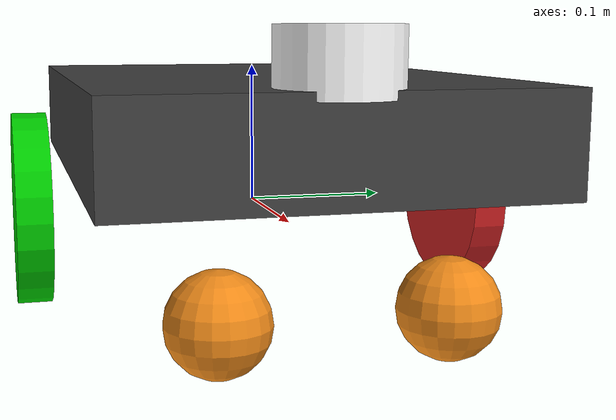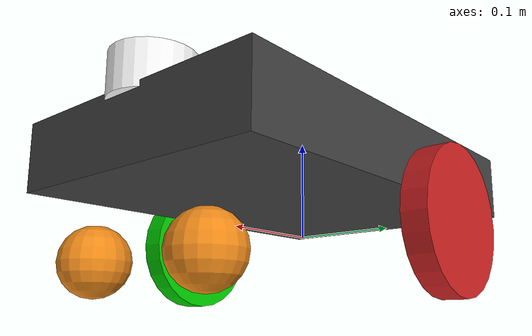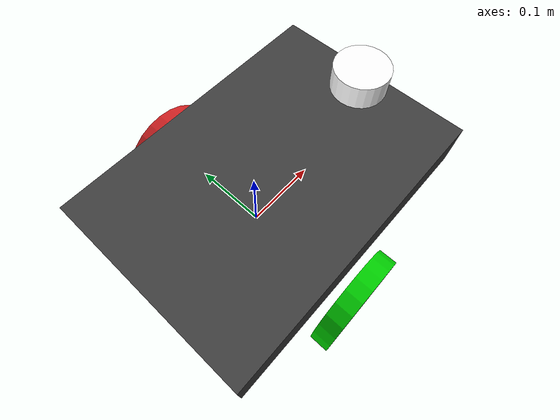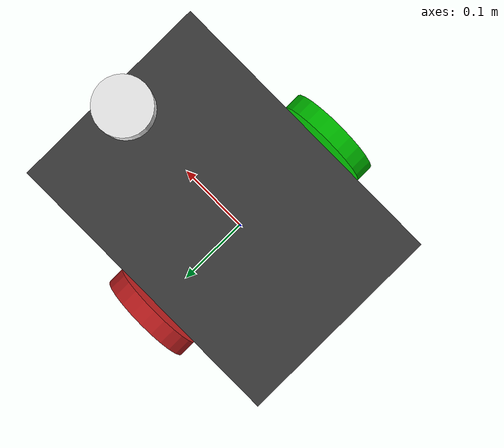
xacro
<?xml version="1.0" ?>

<!-- inspired from http://www.theconstructsim.com/ros-projects-exploring-ros-using-2-wheeled-robot-part-1/#part1  -->

<robot name="mnwlk3r" xmlns:xacro="https://www.ros.org/wiki/xacro" >

  <material name="black">
    <color rgba="0.0 0.0 0.0 1.0"/>
  </material>
  <material name="blue">
    <color rgba="0.0 0.0 0.8 1.0"/> -->
  </material>
  <material name="green">
    <color rgba="0.0 0.8 0.0 1.0"/>
  </material>
  <material name="grey">
    <color rgba="0.25 0.25 0.25 1.0"/>
  </material>
  <material name="orange">
    <color rgba="1.0 0.423529411765 0.0392156862745 1.0"/>
  </material>
  <material name="brown">
    <color rgba="0.870588235294 0.811764705882 0.764705882353 1.0"/>
  </material>
  <material name="red">
    <color rgba="0.80078125 0.12890625 0.1328125 1.0"/>
  </material>
  <material name="white">
    <color rgba="1.0 1.0 1.0 1.0"/>
  </material>

  <gazebo reference="base_footprint">
    <material>Gazebo/Orange</material>
  </gazebo>
  <gazebo reference="link_left_wheel">
    <material>Gazebo/Blue</material>
  </gazebo>
  <gazebo reference="link_right_wheel">
    <material>Gazebo/Blue</material>
  </gazebo>

    <xacro:macro name="cylinder_inertia" params="mass r l">
      <inertia  ixx="${mass*(3*r*r+l*l)/12}" ixy = "0" ixz = "0"
                iyy="${mass*(3*r*r+l*l)/12}" iyz = "0"
                izz="${mass*(r*r)/2}" />
    </xacro:macro>

  <link name="base_footprint">
    <!-- pose and inertial -->
    <pose>0 0 0.068 0 0 0</pose>
    <inertial>
      <mass value="5"/>
      <origin xyz="0 0 0.1" rpy="0.0 0 0"  />
      <inertia ixx="0.0395416666667" ixy="0" ixz="0" iyy="0.106208333333" iyz="0" izz="0.106208333333"/>
    </inertial>

    <collision name="collision_chassis">
      <origin xyz="0.030 0 0.062" rpy="0 0 0" />
      <geometry>
        <box size="0.400 0.280 0.066"/>
      </geometry>
    </collision>

    <visual>
      <origin xyz="0.030 0 0.062" rpy="0 0 0" />  <!-- Z = 29mm offset + half box height = 29 + 66/2 = 62mm   -->
      <geometry>
        <box size="0.400 0.280 0.066"/>
      </geometry>
      <material name="grey"/>
    </visual>

    <!-- caster front left (63mm diameter) -->
    <collision name="caster_front_left_collision">
      <!-- Z = - main wheel radius + caster wheel radius = -136/2 + 63/2 = -68 + 31.5 = -36.5mm  -->
      <origin xyz="0.200 0.070 -0.0365"  rpy=" 0 0 0"  />
      <geometry>
        <sphere radius="0.0315"/>
      </geometry>
      <surface>
        <friction>
          <ode>
            <mu>0</mu>
            <mu2>0</mu2>
            <slip1>1.0</slip1>
            <slip2>1.0</slip2>
          </ode>
        </friction>
      </surface>
    </collision>
    <visual name="caster_front_left_visual">
      <origin xyz="0.200 0.070 -0.0365"  rpy=" 0 0 0"  />
      <geometry>
        <sphere radius="0.0315"/>
      </geometry>
    </visual>
    <!-- caster front right  -->
    <collision name="caster_front_right_collision">
      <origin xyz="0.200 -0.070 -0.0365"  rpy=" 0 0 0"  />
      <geometry>
        <sphere radius="0.0315"/>
      </geometry>
      <surface>
        <friction>
          <ode>
            <mu>0</mu>
            <mu2>0</mu2>
            <slip1>1.0</slip1>
            <slip2>1.0</slip2>
          </ode>
        </friction>
      </surface>
    </collision>
    <visual name="caster_front_right_visual">
      <origin xyz="0.200 -0.070 -0.0365"  rpy=" 0 0 0"  />
      <geometry>
        <sphere radius="0.0315"/>
      </geometry>
    </visual>
  </link>

  <!-- Create wheel right -->
  <!-- wheel diameter 136mm  |  width 24mm -->
  <link name="link_right_wheel">
    <inertial>
      <mass value="0.2"/>
      <origin  xyz="0 0 0" rpy="1.5707 0 0" />  <!-- only 90 deg rotation on X = pi/2 -->
      <inertia ixx="0.00052666666" ixy="0" ixz="0" iyy="0.00052666666" iyz="0" izz="0.001"/>
    </inertial>

    <collision name="link_right_wheel_collision">
      <origin  xyz="0 0 0" rpy="1.5707 0 0" />
      <geometry>
        <cylinder length="0.024" radius="0.068"/>
      </geometry>
    </collision>

    <visual name="link_right_wheel_visual">
      <origin  xyz="0 0 0" rpy="1.5707 0 0" />
      <geometry>
        <cylinder length="0.024" radius="0.068"/>
      </geometry>
      <material name="green"/>
    </visual>

  </link>

  <!--   Joint for right wheel  -->
  <joint name="joint_right_wheel" type="continuous">
    <origin xyz="0 -0.164 0" rpy="0 0 0"  /> <!-- X=0  |  Y = half box width + 12m spacer + half wheel width ==> x = -280/2 - 12mm -24/2 = -164mm  -->
    <child link="link_right_wheel" />
    <parent link="base_footprint"/>
    <axis  xyz="0 1 0" rpy="0 0 0" />
    <limit effort="10000" velocity="1000"/>
    <joint_properties damping="1.0" friction="1.0" />
  </joint>

  <!-- Create wheel left -->
  <!-- wheel diameter 136mm  |  width 24mm -->
  <link name="link_left_wheel">
    <inertial>
      <mass value="0.2"/>
      <origin  xyz="0 0 0" rpy="1.5707 0 0" />  <!-- only 90 deg rotation on X = pi/2 -->
      <inertia ixx="0.00052666666" ixy="0" ixz="0" iyy="0.00052666666" iyz="0" izz="0.001"/>
    </inertial>

    <collision name="link_left_wheel_collision">
      <origin  xyz="0 0 0" rpy="1.5707 0 0" />
      <geometry>
        <cylinder length="0.024" radius="0.068"/>
      </geometry>
    </collision>

    <visual name="link_left_wheel_visual">
      <origin  xyz="0 0 0" rpy="1.5707 0 0" />
      <geometry>
        <cylinder length="0.024" radius="0.068"/>
      </geometry>
      <material name="red"/>
    </visual>

  </link>

  <!--   Joint for left wheel  -->
  <joint name="joint_left_wheel" type="continuous">
    <origin xyz="0 0.164 0" rpy="0 0 0"  /> <!-- X=0  |  Y = half box width + 12m spacer + half wheel width ==> x = -280/2 - 12mm -24/2 = -164mm  -->
    <child link="link_left_wheel" />
    <parent link="base_footprint"/>
    <axis  xyz="0 1 0" rpy="0 0 0" />
    <limit effort="10000" velocity="1000"/>
    <joint_properties damping="1.0" friction="1.0" />
  </joint>

   <!--  *** RPLIDAR LASERSCAN ***  -->
   <!--  specs => https://www.slamtec.com/en/Lidar/A2Spec  -->
   <link name="sensor_laser">
    <inertial>
      <origin xyz="0 0 0" rpy="0 0 0" />
      <mass value="1" />
      <!-- this time we use a xacro to calculate inertia  -->
      <xacro:cylinder_inertia mass="0.190" r="0.038" l="0.041" />
    </inertial>

    <visual>
      <origin xyz="0 0 0" rpy="0 0 0" />
      <geometry>
        <cylinder radius="0.038" length="0.041"/>
      </geometry>
      <material name="white" />
    </visual>

    <collision>
      <origin xyz="0 0 0" rpy="0 0 0" />
      <geometry>
        <cylinder radius="0.038" length="0.041"/>
      </geometry>
    </collision>
  </link>

  <joint name="joint_sensor_laser" type="fixed">
    <origin xyz="0.200 0.000 0.110" rpy="0 0 1.5707" />
    <child link="sensor_laser"/>
    <parent link="base_footprint"/>
  </joint>

</robot>
